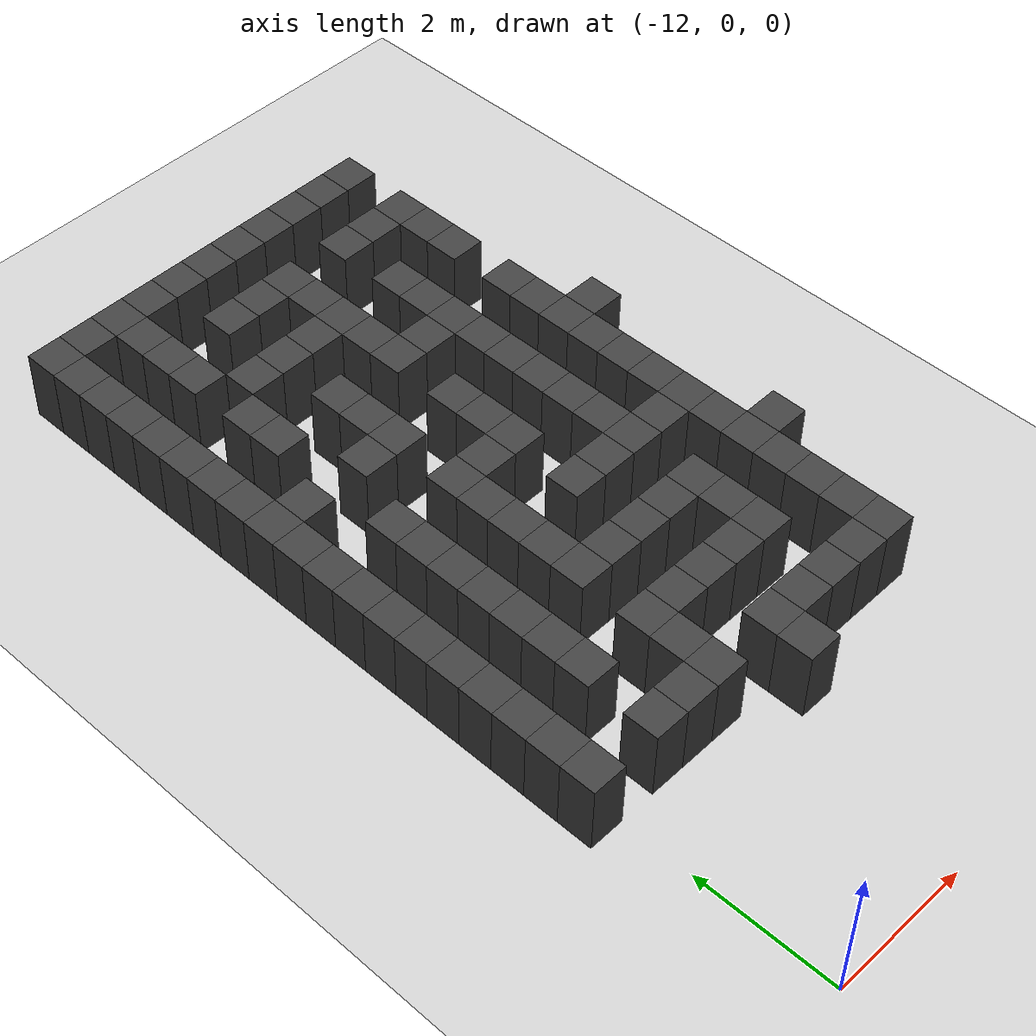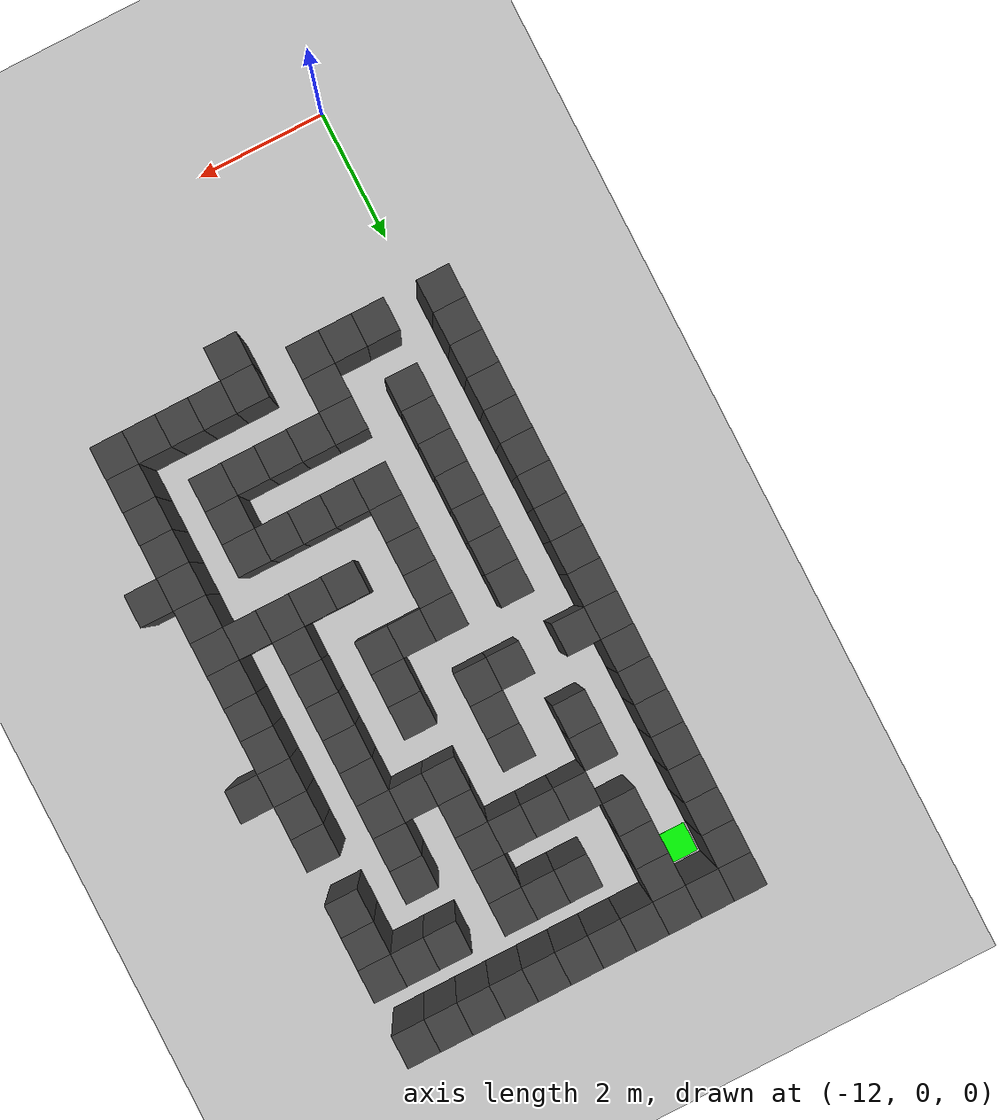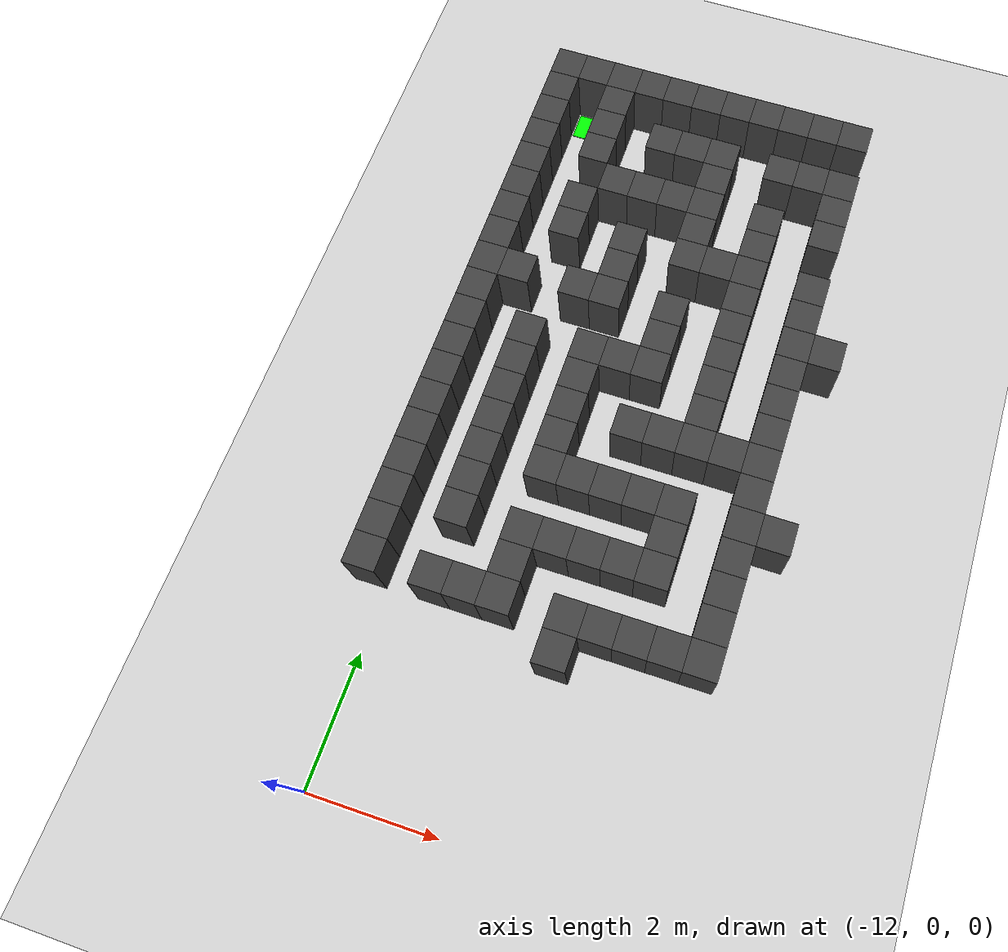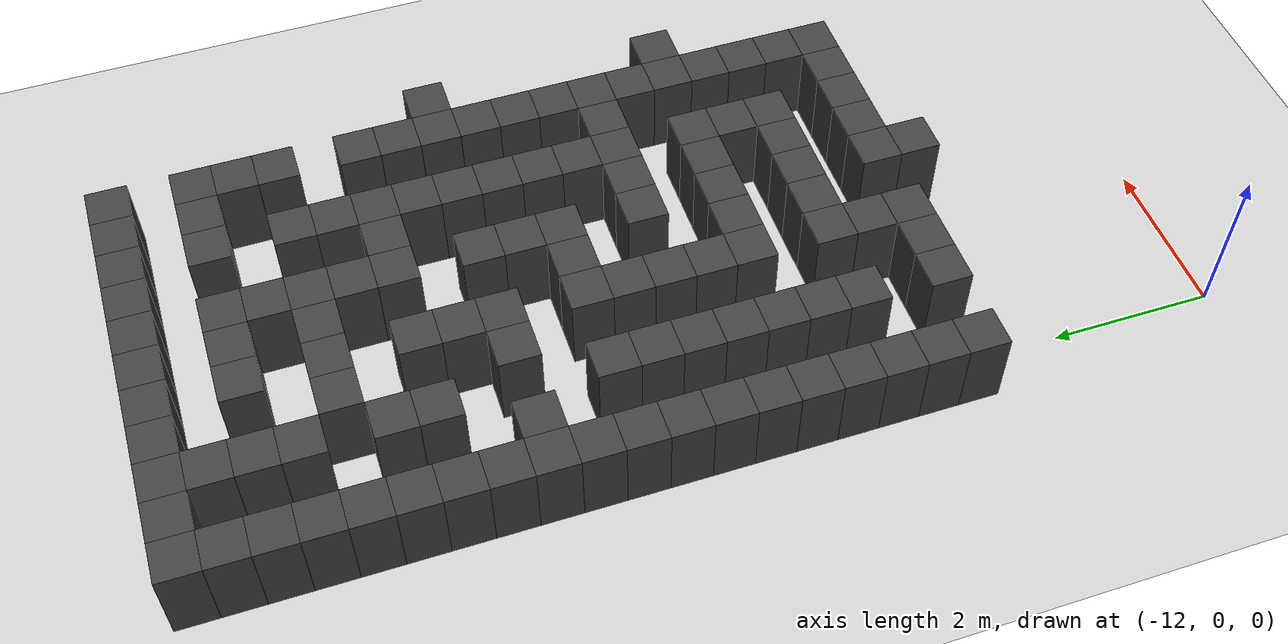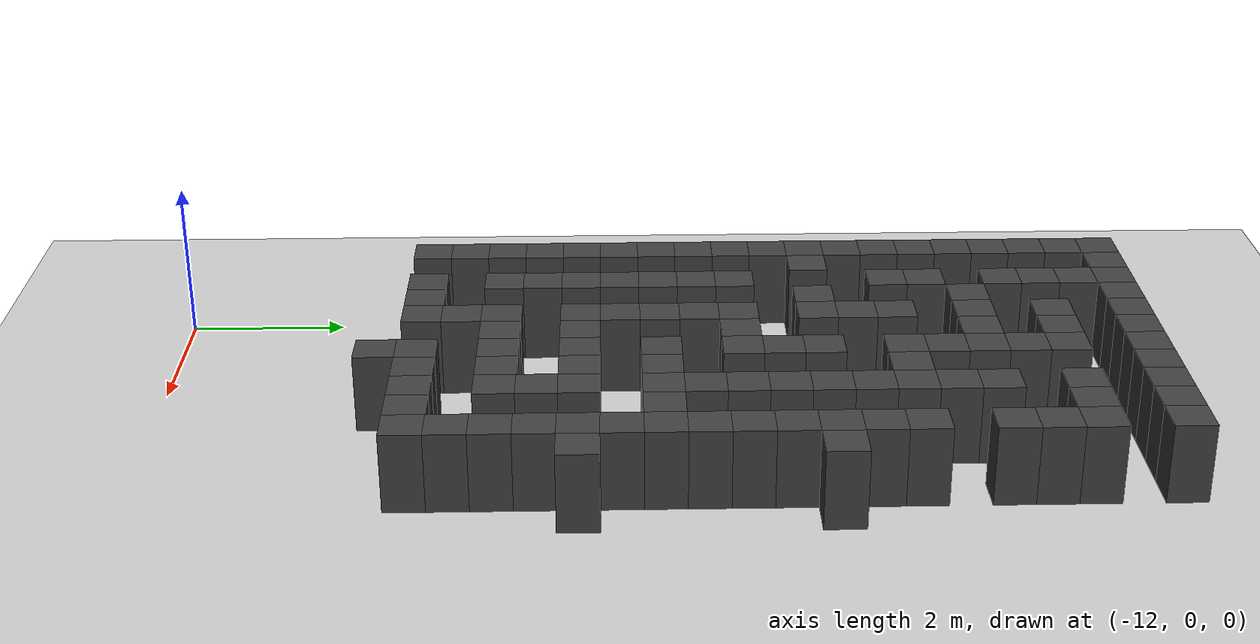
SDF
<sdf version="1.7">
 <world name="map_18313">
  <model name="ground_plane">
   <static>true</static>
   <link name="link">
    <collision name="collision">
     <geometry><plane><normal>0 0 1</normal><size>200 200</size></plane></geometry>
    </collision>
    <visual name="visual">
     <geometry><plane><normal>0 0 1</normal><size>200 200</size></plane></geometry>
     <material><ambient>0.8 0.8 0.8 1</ambient><diffuse>0.8 0.8 0.8 1</diffuse></material>
    </visual>
   </link>
  </model>
  <model name="maze_environment">
   <static>true</static>
   <link name="wall_0">
    <pose>-12.250 12.250 0.500 0 0 0</pose>
    <collision name="col"><geometry><box><size>0.5 0.5 1.0</size></box></geometry></collision>
    <visual name="vis">
     <geometry><box><size>0.5 0.5 1.0</size></box></geometry>
     <material><ambient>0.15 0.15 0.15 1</ambient><diffuse>0.25 0.25 0.25 1</diffuse></material>
    </visual>
   </link>
   <link name="wall_1">
    <pose>-11.750 12.250 0.500 0 0 0</pose>
    <collision name="col"><geometry><box><size>0.5 0.5 1.0</size></box></geometry></collision>
    <visual name="vis">
     <geometry><box><size>0.5 0.5 1.0</size></box></geometry>
     <material><ambient>0.15 0.15 0.15 1</ambient><diffuse>0.25 0.25 0.25 1</diffuse></material>
    </visual>
   </link>
   <link name="wall_2">
    <pose>-11.250 12.250 0.500 0 0 0</pose>
    <collision name="col"><geometry><box><size>0.5 0.5 1.0</size></box></geometry></collision>
    <visual name="vis">
     <geometry><box><size>0.5 0.5 1.0</size></box></geometry>
     <material><ambient>0.15 0.15 0.15 1</ambient><diffuse>0.25 0.25 0.25 1</diffuse></material>
    </visual>
   </link>
   <link name="wall_3">
    <pose>-10.750 12.250 0.500 0 0 0</pose>
    <collision name="col"><geometry><box><size>0.5 0.5 1.0</size></box></geometry></collision>
    <visual name="vis">
     <geometry><box><size>0.5 0.5 1.0</size></box></geometry>
     <material><ambient>0.15 0.15 0.15 1</ambient><diffuse>0.25 0.25 0.25 1</diffuse></material>
    </visual>
   </link>
   <link name="wall_4">
    <pose>-10.250 12.250 0.500 0 0 0</pose>
    <collision name="col"><geometry><box><size>0.5 0.5 1.0</size></box></geometry></collision>
    <visual name="vis">
     <geometry><box><size>0.5 0.5 1.0</size></box></geometry>
     <material><ambient>0.15 0.15 0.15 1</ambient><diffuse>0.25 0.25 0.25 1</diffuse></material>
    </visual>
   </link>
   <link name="wall_5">
    <pose>-9.750 12.250 0.500 0 0 0</pose>
    <collision name="col"><geometry><box><size>0.5 0.5 1.0</size></box></geometry></collision>
    <visual name="vis">
     <geometry><box><size>0.5 0.5 1.0</size></box></geometry>
     <material><ambient>0.15 0.15 0.15 1</ambient><diffuse>0.25 0.25 0.25 1</diffuse></material>
    </visual>
   </link>
   <link name="wall_6">
    <pose>-9.250 12.250 0.500 0 0 0</pose>
    <collision name="col"><geometry><box><size>0.5 0.5 1.0</size></box></geometry></collision>
    <visual name="vis">
     <geometry><box><size>0.5 0.5 1.0</size></box></geometry>
     <material><ambient>0.15 0.15 0.15 1</ambient><diffuse>0.25 0.25 0.25 1</diffuse></material>
    </visual>
   </link>
   <link name="wall_7">
    <pose>-8.750 12.250 0.500 0 0 0</pose>
    <collision name="col"><geometry><box><size>0.5 0.5 1.0</size></box></geometry></collision>
    <visual name="vis">
     <geometry><box><size>0.5 0.5 1.0</size></box></geometry>
     <material><ambient>0.15 0.15 0.15 1</ambient><diffuse>0.25 0.25 0.25 1</diffuse></material>
    </visual>
   </link>
   <link name="wall_8">
    <pose>-8.250 12.250 0.500 0 0 0</pose>
    <collision name="col"><geometry><box><size>0.5 0.5 1.0</size></box></geometry></collision>
    <visual name="vis">
     <geometry><box><size>0.5 0.5 1.0</size></box></geometry>
     <material><ambient>0.15 0.15 0.15 1</ambient><diffuse>0.25 0.25 0.25 1</diffuse></material>
    </visual>
   </link>
   <link name="wall_9">
    <pose>-7.750 12.250 0.500 0 0 0</pose>
    <collision name="col"><geometry><box><size>0.5 0.5 1.0</size></box></geometry></collision>
    <visual name="vis">
     <geometry><box><size>0.5 0.5 1.0</size></box></geometry>
     <material><ambient>0.15 0.15 0.15 1</ambient><diffuse>0.25 0.25 0.25 1</diffuse></material>
    </visual>
   </link>
   <link name="wall_10">
    <pose>-7.250 12.250 0.500 0 0 0</pose>
    <collision name="col"><geometry><box><size>0.5 0.5 1.0</size></box></geometry></collision>
    <visual name="vis">
     <geometry><box><size>0.5 0.5 1.0</size></box></geometry>
     <material><ambient>0.15 0.15 0.15 1</ambient><diffuse>0.25 0.25 0.25 1</diffuse></material>
    </visual>
   </link>
   <link name="wall_50">
    <pose>-12.250 11.750 0.500 0 0 0</pose>
    <collision name="col"><geometry><box><size>0.5 0.5 1.0</size></box></geometry></collision>
    <visual name="vis">
     <geometry><box><size>0.5 0.5 1.0</size></box></geometry>
     <material><ambient>0.15 0.15 0.15 1</ambient><diffuse>0.25 0.25 0.25 1</diffuse></material>
    </visual>
   </link>
   <link name="wall_51">
    <pose>-11.250 11.750 0.500 0 0 0</pose>
    <collision name="col"><geometry><box><size>0.5 0.5 1.0</size></box></geometry></collision>
    <visual name="vis">
     <geometry><box><size>0.5 0.5 1.0</size></box></geometry>
     <material><ambient>0.15 0.15 0.15 1</ambient><diffuse>0.25 0.25 0.25 1</diffuse></material>
    </visual>
   </link>
   <link name="wall_60">
    <pose>-12.250 11.250 0.500 0 0 0</pose>
    <collision name="col"><geometry><box><size>0.5 0.5 1.0</size></box></geometry></collision>
    <visual name="vis">
     <geometry><box><size>0.5 0.5 1.0</size></box></geometry>
     <material><ambient>0.15 0.15 0.15 1</ambient><diffuse>0.25 0.25 0.25 1</diffuse></material>
    </visual>
   </link>
   <link name="wall_61">
    <pose>-11.250 11.250 0.500 0 0 0</pose>
    <collision name="col"><geometry><box><size>0.5 0.5 1.0</size></box></geometry></collision>
    <visual name="vis">
     <geometry><box><size>0.5 0.5 1.0</size></box></geometry>
     <material><ambient>0.15 0.15 0.15 1</ambient><diffuse>0.25 0.25 0.25 1</diffuse></material>
    </visual>
   </link>
   <link name="wall_62">
    <pose>-10.250 11.250 0.500 0 0 0</pose>
    <collision name="col"><geometry><box><size>0.5 0.5 1.0</size></box></geometry></collision>
    <visual name="vis">
     <geometry><box><size>0.5 0.5 1.0</size></box></geometry>
     <material><ambient>0.15 0.15 0.15 1</ambient><diffuse>0.25 0.25 0.25 1</diffuse></material>
    </visual>
   </link>
   <link name="wall_63">
    <pose>-9.750 11.250 0.500 0 0 0</pose>
    <collision name="col"><geometry><box><size>0.5 0.5 1.0</size></box></geometry></collision>
    <visual name="vis">
     <geometry><box><size>0.5 0.5 1.0</size></box></geometry>
     <material><ambient>0.15 0.15 0.15 1</ambient><diffuse>0.25 0.25 0.25 1</diffuse></material>
    </visual>
   </link>
   <link name="wall_64">
    <pose>-9.250 11.250 0.500 0 0 0</pose>
    <collision name="col"><geometry><box><size>0.5 0.5 1.0</size></box></geometry></collision>
    <visual name="vis">
     <geometry><box><size>0.5 0.5 1.0</size></box></geometry>
     <material><ambient>0.15 0.15 0.15 1</ambient><diffuse>0.25 0.25 0.25 1</diffuse></material>
    </visual>
   </link>
   <link name="wall_65">
    <pose>-8.250 11.250 0.500 0 0 0</pose>
    <collision name="col"><geometry><box><size>0.5 0.5 1.0</size></box></geometry></collision>
    <visual name="vis">
     <geometry><box><size>0.5 0.5 1.0</size></box></geometry>
     <material><ambient>0.15 0.15 0.15 1</ambient><diffuse>0.25 0.25 0.25 1</diffuse></material>
    </visual>
   </link>
   <link name="wall_66">
    <pose>-7.750 11.250 0.500 0 0 0</pose>
    <collision name="col"><geometry><box><size>0.5 0.5 1.0</size></box></geometry></collision>
    <visual name="vis">
     <geometry><box><size>0.5 0.5 1.0</size></box></geometry>
     <material><ambient>0.15 0.15 0.15 1</ambient><diffuse>0.25 0.25 0.25 1</diffuse></material>
    </visual>
   </link>
   <link name="wall_67">
    <pose>-7.250 11.250 0.500 0 0 0</pose>
    <collision name="col"><geometry><box><size>0.5 0.5 1.0</size></box></geometry></collision>
    <visual name="vis">
     <geometry><box><size>0.5 0.5 1.0</size></box></geometry>
     <material><ambient>0.15 0.15 0.15 1</ambient><diffuse>0.25 0.25 0.25 1</diffuse></material>
    </visual>
   </link>
   <link name="wall_93">
    <pose>-12.250 10.750 0.500 0 0 0</pose>
    <collision name="col"><geometry><box><size>0.5 0.5 1.0</size></box></geometry></collision>
    <visual name="vis">
     <geometry><box><size>0.5 0.5 1.0</size></box></geometry>
     <material><ambient>0.15 0.15 0.15 1</ambient><diffuse>0.25 0.25 0.25 1</diffuse></material>
    </visual>
   </link>
   <link name="wall_94">
    <pose>-11.250 10.750 0.500 0 0 0</pose>
    <collision name="col"><geometry><box><size>0.5 0.5 1.0</size></box></geometry></collision>
    <visual name="vis">
     <geometry><box><size>0.5 0.5 1.0</size></box></geometry>
     <material><ambient>0.15 0.15 0.15 1</ambient><diffuse>0.25 0.25 0.25 1</diffuse></material>
    </visual>
   </link>
   <link name="wall_95">
    <pose>-9.250 10.750 0.500 0 0 0</pose>
    <collision name="col"><geometry><box><size>0.5 0.5 1.0</size></box></geometry></collision>
    <visual name="vis">
     <geometry><box><size>0.5 0.5 1.0</size></box></geometry>
     <material><ambient>0.15 0.15 0.15 1</ambient><diffuse>0.25 0.25 0.25 1</diffuse></material>
    </visual>
   </link>
   <link name="wall_96">
    <pose>-7.250 10.750 0.500 0 0 0</pose>
    <collision name="col"><geometry><box><size>0.5 0.5 1.0</size></box></geometry></collision>
    <visual name="vis">
     <geometry><box><size>0.5 0.5 1.0</size></box></geometry>
     <material><ambient>0.15 0.15 0.15 1</ambient><diffuse>0.25 0.25 0.25 1</diffuse></material>
    </visual>
   </link>
   <link name="wall_109">
    <pose>-12.250 10.250 0.500 0 0 0</pose>
    <collision name="col"><geometry><box><size>0.5 0.5 1.0</size></box></geometry></collision>
    <visual name="vis">
     <geometry><box><size>0.5 0.5 1.0</size></box></geometry>
     <material><ambient>0.15 0.15 0.15 1</ambient><diffuse>0.25 0.25 0.25 1</diffuse></material>
    </visual>
   </link>
   <link name="wall_110">
    <pose>-10.750 10.250 0.500 0 0 0</pose>
    <collision name="col"><geometry><box><size>0.5 0.5 1.0</size></box></geometry></collision>
    <visual name="vis">
     <geometry><box><size>0.5 0.5 1.0</size></box></geometry>
     <material><ambient>0.15 0.15 0.15 1</ambient><diffuse>0.25 0.25 0.25 1</diffuse></material>
    </visual>
   </link>
   <link name="wall_111">
    <pose>-10.250 10.250 0.500 0 0 0</pose>
    <collision name="col"><geometry><box><size>0.5 0.5 1.0</size></box></geometry></collision>
    <visual name="vis">
     <geometry><box><size>0.5 0.5 1.0</size></box></geometry>
     <material><ambient>0.15 0.15 0.15 1</ambient><diffuse>0.25 0.25 0.25 1</diffuse></material>
    </visual>
   </link>
   <link name="wall_112">
    <pose>-9.750 10.250 0.500 0 0 0</pose>
    <collision name="col"><geometry><box><size>0.5 0.5 1.0</size></box></geometry></collision>
    <visual name="vis">
     <geometry><box><size>0.5 0.5 1.0</size></box></geometry>
     <material><ambient>0.15 0.15 0.15 1</ambient><diffuse>0.25 0.25 0.25 1</diffuse></material>
    </visual>
   </link>
   <link name="wall_113">
    <pose>-9.250 10.250 0.500 0 0 0</pose>
    <collision name="col"><geometry><box><size>0.5 0.5 1.0</size></box></geometry></collision>
    <visual name="vis">
     <geometry><box><size>0.5 0.5 1.0</size></box></geometry>
     <material><ambient>0.15 0.15 0.15 1</ambient><diffuse>0.25 0.25 0.25 1</diffuse></material>
    </visual>
   </link>
   <link name="wall_114">
    <pose>-8.250 10.250 0.500 0 0 0</pose>
    <collision name="col"><geometry><box><size>0.5 0.5 1.0</size></box></geometry></collision>
    <visual name="vis">
     <geometry><box><size>0.5 0.5 1.0</size></box></geometry>
     <material><ambient>0.15 0.15 0.15 1</ambient><diffuse>0.25 0.25 0.25 1</diffuse></material>
    </visual>
   </link>
   <link name="wall_115">
    <pose>-7.250 10.250 0.500 0 0 0</pose>
    <collision name="col"><geometry><box><size>0.5 0.5 1.0</size></box></geometry></collision>
    <visual name="vis">
     <geometry><box><size>0.5 0.5 1.0</size></box></geometry>
     <material><ambient>0.15 0.15 0.15 1</ambient><diffuse>0.25 0.25 0.25 1</diffuse></material>
    </visual>
   </link>
   <link name="wall_146">
    <pose>-12.250 9.750 0.500 0 0 0</pose>
    <collision name="col"><geometry><box><size>0.5 0.5 1.0</size></box></geometry></collision>
    <visual name="vis">
     <geometry><box><size>0.5 0.5 1.0</size></box></geometry>
     <material><ambient>0.15 0.15 0.15 1</ambient><diffuse>0.25 0.25 0.25 1</diffuse></material>
    </visual>
   </link>
   <link name="wall_147">
    <pose>-11.250 9.750 0.500 0 0 0</pose>
    <collision name="col"><geometry><box><size>0.5 0.5 1.0</size></box></geometry></collision>
    <visual name="vis">
     <geometry><box><size>0.5 0.5 1.0</size></box></geometry>
     <material><ambient>0.15 0.15 0.15 1</ambient><diffuse>0.25 0.25 0.25 1</diffuse></material>
    </visual>
   </link>
   <link name="wall_148">
    <pose>-9.250 9.750 0.500 0 0 0</pose>
    <collision name="col"><geometry><box><size>0.5 0.5 1.0</size></box></geometry></collision>
    <visual name="vis">
     <geometry><box><size>0.5 0.5 1.0</size></box></geometry>
     <material><ambient>0.15 0.15 0.15 1</ambient><diffuse>0.25 0.25 0.25 1</diffuse></material>
    </visual>
   </link>
   <link name="wall_149">
    <pose>-8.250 9.750 0.500 0 0 0</pose>
    <collision name="col"><geometry><box><size>0.5 0.5 1.0</size></box></geometry></collision>
    <visual name="vis">
     <geometry><box><size>0.5 0.5 1.0</size></box></geometry>
     <material><ambient>0.15 0.15 0.15 1</ambient><diffuse>0.25 0.25 0.25 1</diffuse></material>
    </visual>
   </link>
   <link name="wall_161">
    <pose>-12.250 9.250 0.500 0 0 0</pose>
    <collision name="col"><geometry><box><size>0.5 0.5 1.0</size></box></geometry></collision>
    <visual name="vis">
     <geometry><box><size>0.5 0.5 1.0</size></box></geometry>
     <material><ambient>0.15 0.15 0.15 1</ambient><diffuse>0.25 0.25 0.25 1</diffuse></material>
    </visual>
   </link>
   <link name="wall_162">
    <pose>-11.250 9.250 0.500 0 0 0</pose>
    <collision name="col"><geometry><box><size>0.5 0.5 1.0</size></box></geometry></collision>
    <visual name="vis">
     <geometry><box><size>0.5 0.5 1.0</size></box></geometry>
     <material><ambient>0.15 0.15 0.15 1</ambient><diffuse>0.25 0.25 0.25 1</diffuse></material>
    </visual>
   </link>
   <link name="wall_163">
    <pose>-10.250 9.250 0.500 0 0 0</pose>
    <collision name="col"><geometry><box><size>0.5 0.5 1.0</size></box></geometry></collision>
    <visual name="vis">
     <geometry><box><size>0.5 0.5 1.0</size></box></geometry>
     <material><ambient>0.15 0.15 0.15 1</ambient><diffuse>0.25 0.25 0.25 1</diffuse></material>
    </visual>
   </link>
   <link name="wall_164">
    <pose>-9.250 9.250 0.500 0 0 0</pose>
    <collision name="col"><geometry><box><size>0.5 0.5 1.0</size></box></geometry></collision>
    <visual name="vis">
     <geometry><box><size>0.5 0.5 1.0</size></box></geometry>
     <material><ambient>0.15 0.15 0.15 1</ambient><diffuse>0.25 0.25 0.25 1</diffuse></material>
    </visual>
   </link>
   <link name="wall_165">
    <pose>-8.750 9.250 0.500 0 0 0</pose>
    <collision name="col"><geometry><box><size>0.5 0.5 1.0</size></box></geometry></collision>
    <visual name="vis">
     <geometry><box><size>0.5 0.5 1.0</size></box></geometry>
     <material><ambient>0.15 0.15 0.15 1</ambient><diffuse>0.25 0.25 0.25 1</diffuse></material>
    </visual>
   </link>
   <link name="wall_166">
    <pose>-8.250 9.250 0.500 0 0 0</pose>
    <collision name="col"><geometry><box><size>0.5 0.5 1.0</size></box></geometry></collision>
    <visual name="vis">
     <geometry><box><size>0.5 0.5 1.0</size></box></geometry>
     <material><ambient>0.15 0.15 0.15 1</ambient><diffuse>0.25 0.25 0.25 1</diffuse></material>
    </visual>
   </link>
   <link name="wall_167">
    <pose>-7.250 9.250 0.500 0 0 0</pose>
    <collision name="col"><geometry><box><size>0.5 0.5 1.0</size></box></geometry></collision>
    <visual name="vis">
     <geometry><box><size>0.5 0.5 1.0</size></box></geometry>
     <material><ambient>0.15 0.15 0.15 1</ambient><diffuse>0.25 0.25 0.25 1</diffuse></material>
    </visual>
   </link>
   <link name="wall_195">
    <pose>-12.250 8.750 0.500 0 0 0</pose>
    <collision name="col"><geometry><box><size>0.5 0.5 1.0</size></box></geometry></collision>
    <visual name="vis">
     <geometry><box><size>0.5 0.5 1.0</size></box></geometry>
     <material><ambient>0.15 0.15 0.15 1</ambient><diffuse>0.25 0.25 0.25 1</diffuse></material>
    </visual>
   </link>
   <link name="wall_196">
    <pose>-10.250 8.750 0.500 0 0 0</pose>
    <collision name="col"><geometry><box><size>0.5 0.5 1.0</size></box></geometry></collision>
    <visual name="vis">
     <geometry><box><size>0.5 0.5 1.0</size></box></geometry>
     <material><ambient>0.15 0.15 0.15 1</ambient><diffuse>0.25 0.25 0.25 1</diffuse></material>
    </visual>
   </link>
   <link name="wall_197">
    <pose>-8.250 8.750 0.500 0 0 0</pose>
    <collision name="col"><geometry><box><size>0.5 0.5 1.0</size></box></geometry></collision>
    <visual name="vis">
     <geometry><box><size>0.5 0.5 1.0</size></box></geometry>
     <material><ambient>0.15 0.15 0.15 1</ambient><diffuse>0.25 0.25 0.25 1</diffuse></material>
    </visual>
   </link>
   <link name="wall_198">
    <pose>-7.250 8.750 0.500 0 0 0</pose>
    <collision name="col"><geometry><box><size>0.5 0.5 1.0</size></box></geometry></collision>
    <visual name="vis">
     <geometry><box><size>0.5 0.5 1.0</size></box></geometry>
     <material><ambient>0.15 0.15 0.15 1</ambient><diffuse>0.25 0.25 0.25 1</diffuse></material>
    </visual>
   </link>
   <link name="wall_210">
    <pose>-12.250 8.250 0.500 0 0 0</pose>
    <collision name="col"><geometry><box><size>0.5 0.5 1.0</size></box></geometry></collision>
    <visual name="vis">
     <geometry><box><size>0.5 0.5 1.0</size></box></geometry>
     <material><ambient>0.15 0.15 0.15 1</ambient><diffuse>0.25 0.25 0.25 1</diffuse></material>
    </visual>
   </link>
   <link name="wall_211">
    <pose>-11.750 8.250 0.500 0 0 0</pose>
    <collision name="col"><geometry><box><size>0.5 0.5 1.0</size></box></geometry></collision>
    <visual name="vis">
     <geometry><box><size>0.5 0.5 1.0</size></box></geometry>
     <material><ambient>0.15 0.15 0.15 1</ambient><diffuse>0.25 0.25 0.25 1</diffuse></material>
    </visual>
   </link>
   <link name="wall_212">
    <pose>-10.750 8.250 0.500 0 0 0</pose>
    <collision name="col"><geometry><box><size>0.5 0.5 1.0</size></box></geometry></collision>
    <visual name="vis">
     <geometry><box><size>0.5 0.5 1.0</size></box></geometry>
     <material><ambient>0.15 0.15 0.15 1</ambient><diffuse>0.25 0.25 0.25 1</diffuse></material>
    </visual>
   </link>
   <link name="wall_213">
    <pose>-10.250 8.250 0.500 0 0 0</pose>
    <collision name="col"><geometry><box><size>0.5 0.5 1.0</size></box></geometry></collision>
    <visual name="vis">
     <geometry><box><size>0.5 0.5 1.0</size></box></geometry>
     <material><ambient>0.15 0.15 0.15 1</ambient><diffuse>0.25 0.25 0.25 1</diffuse></material>
    </visual>
   </link>
   <link name="wall_214">
    <pose>-9.250 8.250 0.500 0 0 0</pose>
    <collision name="col"><geometry><box><size>0.5 0.5 1.0</size></box></geometry></collision>
    <visual name="vis">
     <geometry><box><size>0.5 0.5 1.0</size></box></geometry>
     <material><ambient>0.15 0.15 0.15 1</ambient><diffuse>0.25 0.25 0.25 1</diffuse></material>
    </visual>
   </link>
   <link name="wall_215">
    <pose>-8.250 8.250 0.500 0 0 0</pose>
    <collision name="col"><geometry><box><size>0.5 0.5 1.0</size></box></geometry></collision>
    <visual name="vis">
     <geometry><box><size>0.5 0.5 1.0</size></box></geometry>
     <material><ambient>0.15 0.15 0.15 1</ambient><diffuse>0.25 0.25 0.25 1</diffuse></material>
    </visual>
   </link>
   <link name="wall_216">
    <pose>-7.250 8.250 0.500 0 0 0</pose>
    <collision name="col"><geometry><box><size>0.5 0.5 1.0</size></box></geometry></collision>
    <visual name="vis">
     <geometry><box><size>0.5 0.5 1.0</size></box></geometry>
     <material><ambient>0.15 0.15 0.15 1</ambient><diffuse>0.25 0.25 0.25 1</diffuse></material>
    </visual>
   </link>
   <link name="wall_217">
    <pose>-6.750 8.250 0.500 0 0 0</pose>
    <collision name="col"><geometry><box><size>0.5 0.5 1.0</size></box></geometry></collision>
    <visual name="vis">
     <geometry><box><size>0.5 0.5 1.0</size></box></geometry>
     <material><ambient>0.15 0.15 0.15 1</ambient><diffuse>0.25 0.25 0.25 1</diffuse></material>
    </visual>
   </link>
   <link name="wall_245">
    <pose>-12.250 7.750 0.500 0 0 0</pose>
    <collision name="col"><geometry><box><size>0.5 0.5 1.0</size></box></geometry></collision>
    <visual name="vis">
     <geometry><box><size>0.5 0.5 1.0</size></box></geometry>
     <material><ambient>0.15 0.15 0.15 1</ambient><diffuse>0.25 0.25 0.25 1</diffuse></material>
    </visual>
   </link>
   <link name="wall_246">
    <pose>-9.250 7.750 0.500 0 0 0</pose>
    <collision name="col"><geometry><box><size>0.5 0.5 1.0</size></box></geometry></collision>
    <visual name="vis">
     <geometry><box><size>0.5 0.5 1.0</size></box></geometry>
     <material><ambient>0.15 0.15 0.15 1</ambient><diffuse>0.25 0.25 0.25 1</diffuse></material>
    </visual>
   </link>
   <link name="wall_247">
    <pose>-8.250 7.750 0.500 0 0 0</pose>
    <collision name="col"><geometry><box><size>0.5 0.5 1.0</size></box></geometry></collision>
    <visual name="vis">
     <geometry><box><size>0.5 0.5 1.0</size></box></geometry>
     <material><ambient>0.15 0.15 0.15 1</ambient><diffuse>0.25 0.25 0.25 1</diffuse></material>
    </visual>
   </link>
   <link name="wall_248">
    <pose>-7.250 7.750 0.500 0 0 0</pose>
    <collision name="col"><geometry><box><size>0.5 0.5 1.0</size></box></geometry></collision>
    <visual name="vis">
     <geometry><box><size>0.5 0.5 1.0</size></box></geometry>
     <material><ambient>0.15 0.15 0.15 1</ambient><diffuse>0.25 0.25 0.25 1</diffuse></material>
    </visual>
   </link>
   <link name="wall_259">
    <pose>-12.250 7.250 0.500 0 0 0</pose>
    <collision name="col"><geometry><box><size>0.5 0.5 1.0</size></box></geometry></collision>
    <visual name="vis">
     <geometry><box><size>0.5 0.5 1.0</size></box></geometry>
     <material><ambient>0.15 0.15 0.15 1</ambient><diffuse>0.25 0.25 0.25 1</diffuse></material>
    </visual>
   </link>
   <link name="wall_260">
    <pose>-11.250 7.250 0.500 0 0 0</pose>
    <collision name="col"><geometry><box><size>0.5 0.5 1.0</size></box></geometry></collision>
    <visual name="vis">
     <geometry><box><size>0.5 0.5 1.0</size></box></geometry>
     <material><ambient>0.15 0.15 0.15 1</ambient><diffuse>0.25 0.25 0.25 1</diffuse></material>
    </visual>
   </link>
   <link name="wall_261">
    <pose>-10.250 7.250 0.500 0 0 0</pose>
    <collision name="col"><geometry><box><size>0.5 0.5 1.0</size></box></geometry></collision>
    <visual name="vis">
     <geometry><box><size>0.5 0.5 1.0</size></box></geometry>
     <material><ambient>0.15 0.15 0.15 1</ambient><diffuse>0.25 0.25 0.25 1</diffuse></material>
    </visual>
   </link>
   <link name="wall_262">
    <pose>-9.750 7.250 0.500 0 0 0</pose>
    <collision name="col"><geometry><box><size>0.5 0.5 1.0</size></box></geometry></collision>
    <visual name="vis">
     <geometry><box><size>0.5 0.5 1.0</size></box></geometry>
     <material><ambient>0.15 0.15 0.15 1</ambient><diffuse>0.25 0.25 0.25 1</diffuse></material>
    </visual>
   </link>
   <link name="wall_263">
    <pose>-9.250 7.250 0.500 0 0 0</pose>
    <collision name="col"><geometry><box><size>0.5 0.5 1.0</size></box></geometry></collision>
    <visual name="vis">
     <geometry><box><size>0.5 0.5 1.0</size></box></geometry>
     <material><ambient>0.15 0.15 0.15 1</ambient><diffuse>0.25 0.25 0.25 1</diffuse></material>
    </visual>
   </link>
   <link name="wall_264">
    <pose>-8.250 7.250 0.500 0 0 0</pose>
    <collision name="col"><geometry><box><size>0.5 0.5 1.0</size></box></geometry></collision>
    <visual name="vis">
     <geometry><box><size>0.5 0.5 1.0</size></box></geometry>
     <material><ambient>0.15 0.15 0.15 1</ambient><diffuse>0.25 0.25 0.25 1</diffuse></material>
    </visual>
   </link>
   <link name="wall_265">
    <pose>-7.250 7.250 0.500 0 0 0</pose>
    <collision name="col"><geometry><box><size>0.5 0.5 1.0</size></box></geometry></collision>
    <visual name="vis">
     <geometry><box><size>0.5 0.5 1.0</size></box></geometry>
     <material><ambient>0.15 0.15 0.15 1</ambient><diffuse>0.25 0.25 0.25 1</diffuse></material>
    </visual>
   </link>
   <link name="wall_294">
    <pose>-12.250 6.750 0.500 0 0 0</pose>
    <collision name="col"><geometry><box><size>0.5 0.5 1.0</size></box></geometry></collision>
    <visual name="vis">
     <geometry><box><size>0.5 0.5 1.0</size></box></geometry>
     <material><ambient>0.15 0.15 0.15 1</ambient><diffuse>0.25 0.25 0.25 1</diffuse></material>
    </visual>
   </link>
   <link name="wall_295">
    <pose>-11.250 6.750 0.500 0 0 0</pose>
    <collision name="col"><geometry><box><size>0.5 0.5 1.0</size></box></geometry></collision>
    <visual name="vis">
     <geometry><box><size>0.5 0.5 1.0</size></box></geometry>
     <material><ambient>0.15 0.15 0.15 1</ambient><diffuse>0.25 0.25 0.25 1</diffuse></material>
    </visual>
   </link>
   <link name="wall_296">
    <pose>-10.250 6.750 0.500 0 0 0</pose>
    <collision name="col"><geometry><box><size>0.5 0.5 1.0</size></box></geometry></collision>
    <visual name="vis">
     <geometry><box><size>0.5 0.5 1.0</size></box></geometry>
     <material><ambient>0.15 0.15 0.15 1</ambient><diffuse>0.25 0.25 0.25 1</diffuse></material>
    </visual>
   </link>
   <link name="wall_297">
    <pose>-8.250 6.750 0.500 0 0 0</pose>
    <collision name="col"><geometry><box><size>0.5 0.5 1.0</size></box></geometry></collision>
    <visual name="vis">
     <geometry><box><size>0.5 0.5 1.0</size></box></geometry>
     <material><ambient>0.15 0.15 0.15 1</ambient><diffuse>0.25 0.25 0.25 1</diffuse></material>
    </visual>
   </link>
   <link name="wall_298">
    <pose>-7.250 6.750 0.500 0 0 0</pose>
    <collision name="col"><geometry><box><size>0.5 0.5 1.0</size></box></geometry></collision>
    <visual name="vis">
     <geometry><box><size>0.5 0.5 1.0</size></box></geometry>
     <material><ambient>0.15 0.15 0.15 1</ambient><diffuse>0.25 0.25 0.25 1</diffuse></material>
    </visual>
   </link>
   <link name="wall_310">
    <pose>-12.250 6.250 0.500 0 0 0</pose>
    <collision name="col"><geometry><box><size>0.5 0.5 1.0</size></box></geometry></collision>
    <visual name="vis">
     <geometry><box><size>0.5 0.5 1.0</size></box></geometry>
     <material><ambient>0.15 0.15 0.15 1</ambient><diffuse>0.25 0.25 0.25 1</diffuse></material>
    </visual>
   </link>
   <link name="wall_311">
    <pose>-11.250 6.250 0.500 0 0 0</pose>
    <collision name="col"><geometry><box><size>0.5 0.5 1.0</size></box></geometry></collision>
    <visual name="vis">
     <geometry><box><size>0.5 0.5 1.0</size></box></geometry>
     <material><ambient>0.15 0.15 0.15 1</ambient><diffuse>0.25 0.25 0.25 1</diffuse></material>
    </visual>
   </link>
   <link name="wall_312">
    <pose>-10.250 6.250 0.500 0 0 0</pose>
    <collision name="col"><geometry><box><size>0.5 0.5 1.0</size></box></geometry></collision>
    <visual name="vis">
     <geometry><box><size>0.5 0.5 1.0</size></box></geometry>
     <material><ambient>0.15 0.15 0.15 1</ambient><diffuse>0.25 0.25 0.25 1</diffuse></material>
    </visual>
   </link>
   <link name="wall_313">
    <pose>-9.250 6.250 0.500 0 0 0</pose>
    <collision name="col"><geometry><box><size>0.5 0.5 1.0</size></box></geometry></collision>
    <visual name="vis">
     <geometry><box><size>0.5 0.5 1.0</size></box></geometry>
     <material><ambient>0.15 0.15 0.15 1</ambient><diffuse>0.25 0.25 0.25 1</diffuse></material>
    </visual>
   </link>
   <link name="wall_314">
    <pose>-8.750 6.250 0.500 0 0 0</pose>
    <collision name="col"><geometry><box><size>0.5 0.5 1.0</size></box></geometry></collision>
    <visual name="vis">
     <geometry><box><size>0.5 0.5 1.0</size></box></geometry>
     <material><ambient>0.15 0.15 0.15 1</ambient><diffuse>0.25 0.25 0.25 1</diffuse></material>
    </visual>
   </link>
   <link name="wall_315">
    <pose>-8.250 6.250 0.500 0 0 0</pose>
    <collision name="col"><geometry><box><size>0.5 0.5 1.0</size></box></geometry></collision>
    <visual name="vis">
     <geometry><box><size>0.5 0.5 1.0</size></box></geometry>
     <material><ambient>0.15 0.15 0.15 1</ambient><diffuse>0.25 0.25 0.25 1</diffuse></material>
    </visual>
   </link>
   <link name="wall_316">
    <pose>-7.750 6.250 0.500 0 0 0</pose>
    <collision name="col"><geometry><box><size>0.5 0.5 1.0</size></box></geometry></collision>
    <visual name="vis">
     <geometry><box><size>0.5 0.5 1.0</size></box></geometry>
     <material><ambient>0.15 0.15 0.15 1</ambient><diffuse>0.25 0.25 0.25 1</diffuse></material>
    </visual>
   </link>
   <link name="wall_317">
    <pose>-7.250 6.250 0.500 0 0 0</pose>
    <collision name="col"><geometry><box><size>0.5 0.5 1.0</size></box></geometry></collision>
    <visual name="vis">
     <geometry><box><size>0.5 0.5 1.0</size></box></geometry>
     <material><ambient>0.15 0.15 0.15 1</ambient><diffuse>0.25 0.25 0.25 1</diffuse></material>
    </visual>
   </link>
   <link name="wall_346">
    <pose>-12.250 5.750 0.500 0 0 0</pose>
    <collision name="col"><geometry><box><size>0.5 0.5 1.0</size></box></geometry></collision>
    <visual name="vis">
     <geometry><box><size>0.5 0.5 1.0</size></box></geometry>
     <material><ambient>0.15 0.15 0.15 1</ambient><diffuse>0.25 0.25 0.25 1</diffuse></material>
    </visual>
   </link>
   <link name="wall_347">
    <pose>-11.250 5.750 0.500 0 0 0</pose>
    <collision name="col"><geometry><box><size>0.5 0.5 1.0</size></box></geometry></collision>
    <visual name="vis">
     <geometry><box><size>0.5 0.5 1.0</size></box></geometry>
     <material><ambient>0.15 0.15 0.15 1</ambient><diffuse>0.25 0.25 0.25 1</diffuse></material>
    </visual>
   </link>
   <link name="wall_348">
    <pose>-10.250 5.750 0.500 0 0 0</pose>
    <collision name="col"><geometry><box><size>0.5 0.5 1.0</size></box></geometry></collision>
    <visual name="vis">
     <geometry><box><size>0.5 0.5 1.0</size></box></geometry>
     <material><ambient>0.15 0.15 0.15 1</ambient><diffuse>0.25 0.25 0.25 1</diffuse></material>
    </visual>
   </link>
   <link name="wall_349">
    <pose>-7.250 5.750 0.500 0 0 0</pose>
    <collision name="col"><geometry><box><size>0.5 0.5 1.0</size></box></geometry></collision>
    <visual name="vis">
     <geometry><box><size>0.5 0.5 1.0</size></box></geometry>
     <material><ambient>0.15 0.15 0.15 1</ambient><diffuse>0.25 0.25 0.25 1</diffuse></material>
    </visual>
   </link>
   <link name="wall_359">
    <pose>-12.250 5.250 0.500 0 0 0</pose>
    <collision name="col"><geometry><box><size>0.5 0.5 1.0</size></box></geometry></collision>
    <visual name="vis">
     <geometry><box><size>0.5 0.5 1.0</size></box></geometry>
     <material><ambient>0.15 0.15 0.15 1</ambient><diffuse>0.25 0.25 0.25 1</diffuse></material>
    </visual>
   </link>
   <link name="wall_360">
    <pose>-11.250 5.250 0.500 0 0 0</pose>
    <collision name="col"><geometry><box><size>0.5 0.5 1.0</size></box></geometry></collision>
    <visual name="vis">
     <geometry><box><size>0.5 0.5 1.0</size></box></geometry>
     <material><ambient>0.15 0.15 0.15 1</ambient><diffuse>0.25 0.25 0.25 1</diffuse></material>
    </visual>
   </link>
   <link name="wall_361">
    <pose>-10.250 5.250 0.500 0 0 0</pose>
    <collision name="col"><geometry><box><size>0.5 0.5 1.0</size></box></geometry></collision>
    <visual name="vis">
     <geometry><box><size>0.5 0.5 1.0</size></box></geometry>
     <material><ambient>0.15 0.15 0.15 1</ambient><diffuse>0.25 0.25 0.25 1</diffuse></material>
    </visual>
   </link>
   <link name="wall_362">
    <pose>-9.750 5.250 0.500 0 0 0</pose>
    <collision name="col"><geometry><box><size>0.5 0.5 1.0</size></box></geometry></collision>
    <visual name="vis">
     <geometry><box><size>0.5 0.5 1.0</size></box></geometry>
     <material><ambient>0.15 0.15 0.15 1</ambient><diffuse>0.25 0.25 0.25 1</diffuse></material>
    </visual>
   </link>
   <link name="wall_363">
    <pose>-9.250 5.250 0.500 0 0 0</pose>
    <collision name="col"><geometry><box><size>0.5 0.5 1.0</size></box></geometry></collision>
    <visual name="vis">
     <geometry><box><size>0.5 0.5 1.0</size></box></geometry>
     <material><ambient>0.15 0.15 0.15 1</ambient><diffuse>0.25 0.25 0.25 1</diffuse></material>
    </visual>
   </link>
   <link name="wall_364">
    <pose>-8.750 5.250 0.500 0 0 0</pose>
    <collision name="col"><geometry><box><size>0.5 0.5 1.0</size></box></geometry></collision>
    <visual name="vis">
     <geometry><box><size>0.5 0.5 1.0</size></box></geometry>
     <material><ambient>0.15 0.15 0.15 1</ambient><diffuse>0.25 0.25 0.25 1</diffuse></material>
    </visual>
   </link>
   <link name="wall_365">
    <pose>-8.250 5.250 0.500 0 0 0</pose>
    <collision name="col"><geometry><box><size>0.5 0.5 1.0</size></box></geometry></collision>
    <visual name="vis">
     <geometry><box><size>0.5 0.5 1.0</size></box></geometry>
     <material><ambient>0.15 0.15 0.15 1</ambient><diffuse>0.25 0.25 0.25 1</diffuse></material>
    </visual>
   </link>
   <link name="wall_366">
    <pose>-7.250 5.250 0.500 0 0 0</pose>
    <collision name="col"><geometry><box><size>0.5 0.5 1.0</size></box></geometry></collision>
    <visual name="vis">
     <geometry><box><size>0.5 0.5 1.0</size></box></geometry>
     <material><ambient>0.15 0.15 0.15 1</ambient><diffuse>0.25 0.25 0.25 1</diffuse></material>
    </visual>
   </link>
   <link name="wall_367">
    <pose>-6.750 5.250 0.500 0 0 0</pose>
    <collision name="col"><geometry><box><size>0.5 0.5 1.0</size></box></geometry></collision>
    <visual name="vis">
     <geometry><box><size>0.5 0.5 1.0</size></box></geometry>
     <material><ambient>0.15 0.15 0.15 1</ambient><diffuse>0.25 0.25 0.25 1</diffuse></material>
    </visual>
   </link>
   <link name="wall_396">
    <pose>-12.250 4.750 0.500 0 0 0</pose>
    <collision name="col"><geometry><box><size>0.5 0.5 1.0</size></box></geometry></collision>
    <visual name="vis">
     <geometry><box><size>0.5 0.5 1.0</size></box></geometry>
     <material><ambient>0.15 0.15 0.15 1</ambient><diffuse>0.25 0.25 0.25 1</diffuse></material>
    </visual>
   </link>
   <link name="wall_397">
    <pose>-11.250 4.750 0.500 0 0 0</pose>
    <collision name="col"><geometry><box><size>0.5 0.5 1.0</size></box></geometry></collision>
    <visual name="vis">
     <geometry><box><size>0.5 0.5 1.0</size></box></geometry>
     <material><ambient>0.15 0.15 0.15 1</ambient><diffuse>0.25 0.25 0.25 1</diffuse></material>
    </visual>
   </link>
   <link name="wall_398">
    <pose>-8.250 4.750 0.500 0 0 0</pose>
    <collision name="col"><geometry><box><size>0.5 0.5 1.0</size></box></geometry></collision>
    <visual name="vis">
     <geometry><box><size>0.5 0.5 1.0</size></box></geometry>
     <material><ambient>0.15 0.15 0.15 1</ambient><diffuse>0.25 0.25 0.25 1</diffuse></material>
    </visual>
   </link>
   <link name="wall_399">
    <pose>-7.250 4.750 0.500 0 0 0</pose>
    <collision name="col"><geometry><box><size>0.5 0.5 1.0</size></box></geometry></collision>
    <visual name="vis">
     <geometry><box><size>0.5 0.5 1.0</size></box></geometry>
     <material><ambient>0.15 0.15 0.15 1</ambient><diffuse>0.25 0.25 0.25 1</diffuse></material>
    </visual>
   </link>
   <link name="wall_409">
    <pose>-12.250 4.250 0.500 0 0 0</pose>
    <collision name="col"><geometry><box><size>0.5 0.5 1.0</size></box></geometry></collision>
    <visual name="vis">
     <geometry><box><size>0.5 0.5 1.0</size></box></geometry>
     <material><ambient>0.15 0.15 0.15 1</ambient><diffuse>0.25 0.25 0.25 1</diffuse></material>
    </visual>
   </link>
   <link name="wall_410">
    <pose>-11.250 4.250 0.500 0 0 0</pose>
    <collision name="col"><geometry><box><size>0.5 0.5 1.0</size></box></geometry></collision>
    <visual name="vis">
     <geometry><box><size>0.5 0.5 1.0</size></box></geometry>
     <material><ambient>0.15 0.15 0.15 1</ambient><diffuse>0.25 0.25 0.25 1</diffuse></material>
    </visual>
   </link>
   <link name="wall_411">
    <pose>-10.250 4.250 0.500 0 0 0</pose>
    <collision name="col"><geometry><box><size>0.5 0.5 1.0</size></box></geometry></collision>
    <visual name="vis">
     <geometry><box><size>0.5 0.5 1.0</size></box></geometry>
     <material><ambient>0.15 0.15 0.15 1</ambient><diffuse>0.25 0.25 0.25 1</diffuse></material>
    </visual>
   </link>
   <link name="wall_412">
    <pose>-9.750 4.250 0.500 0 0 0</pose>
    <collision name="col"><geometry><box><size>0.5 0.5 1.0</size></box></geometry></collision>
    <visual name="vis">
     <geometry><box><size>0.5 0.5 1.0</size></box></geometry>
     <material><ambient>0.15 0.15 0.15 1</ambient><diffuse>0.25 0.25 0.25 1</diffuse></material>
    </visual>
   </link>
   <link name="wall_413">
    <pose>-9.250 4.250 0.500 0 0 0</pose>
    <collision name="col"><geometry><box><size>0.5 0.5 1.0</size></box></geometry></collision>
    <visual name="vis">
     <geometry><box><size>0.5 0.5 1.0</size></box></geometry>
     <material><ambient>0.15 0.15 0.15 1</ambient><diffuse>0.25 0.25 0.25 1</diffuse></material>
    </visual>
   </link>
   <link name="wall_414">
    <pose>-8.750 4.250 0.500 0 0 0</pose>
    <collision name="col"><geometry><box><size>0.5 0.5 1.0</size></box></geometry></collision>
    <visual name="vis">
     <geometry><box><size>0.5 0.5 1.0</size></box></geometry>
     <material><ambient>0.15 0.15 0.15 1</ambient><diffuse>0.25 0.25 0.25 1</diffuse></material>
    </visual>
   </link>
   <link name="wall_415">
    <pose>-8.250 4.250 0.500 0 0 0</pose>
    <collision name="col"><geometry><box><size>0.5 0.5 1.0</size></box></geometry></collision>
    <visual name="vis">
     <geometry><box><size>0.5 0.5 1.0</size></box></geometry>
     <material><ambient>0.15 0.15 0.15 1</ambient><diffuse>0.25 0.25 0.25 1</diffuse></material>
    </visual>
   </link>
   <link name="wall_416">
    <pose>-7.250 4.250 0.500 0 0 0</pose>
    <collision name="col"><geometry><box><size>0.5 0.5 1.0</size></box></geometry></collision>
    <visual name="vis">
     <geometry><box><size>0.5 0.5 1.0</size></box></geometry>
     <material><ambient>0.15 0.15 0.15 1</ambient><diffuse>0.25 0.25 0.25 1</diffuse></material>
    </visual>
   </link>
   <link name="wall_446">
    <pose>-12.250 3.750 0.500 0 0 0</pose>
    <collision name="col"><geometry><box><size>0.5 0.5 1.0</size></box></geometry></collision>
    <visual name="vis">
     <geometry><box><size>0.5 0.5 1.0</size></box></geometry>
     <material><ambient>0.15 0.15 0.15 1</ambient><diffuse>0.25 0.25 0.25 1</diffuse></material>
    </visual>
   </link>
   <link name="wall_447">
    <pose>-10.250 3.750 0.500 0 0 0</pose>
    <collision name="col"><geometry><box><size>0.5 0.5 1.0</size></box></geometry></collision>
    <visual name="vis">
     <geometry><box><size>0.5 0.5 1.0</size></box></geometry>
     <material><ambient>0.15 0.15 0.15 1</ambient><diffuse>0.25 0.25 0.25 1</diffuse></material>
    </visual>
   </link>
   <link name="wall_448">
    <pose>-7.250 3.750 0.500 0 0 0</pose>
    <collision name="col"><geometry><box><size>0.5 0.5 1.0</size></box></geometry></collision>
    <visual name="vis">
     <geometry><box><size>0.5 0.5 1.0</size></box></geometry>
     <material><ambient>0.15 0.15 0.15 1</ambient><diffuse>0.25 0.25 0.25 1</diffuse></material>
    </visual>
   </link>
   <link name="wall_460">
    <pose>-12.250 3.250 0.500 0 0 0</pose>
    <collision name="col"><geometry><box><size>0.5 0.5 1.0</size></box></geometry></collision>
    <visual name="vis">
     <geometry><box><size>0.5 0.5 1.0</size></box></geometry>
     <material><ambient>0.15 0.15 0.15 1</ambient><diffuse>0.25 0.25 0.25 1</diffuse></material>
    </visual>
   </link>
   <link name="wall_461">
    <pose>-11.250 3.250 0.500 0 0 0</pose>
    <collision name="col"><geometry><box><size>0.5 0.5 1.0</size></box></geometry></collision>
    <visual name="vis">
     <geometry><box><size>0.5 0.5 1.0</size></box></geometry>
     <material><ambient>0.15 0.15 0.15 1</ambient><diffuse>0.25 0.25 0.25 1</diffuse></material>
    </visual>
   </link>
   <link name="wall_462">
    <pose>-10.750 3.250 0.500 0 0 0</pose>
    <collision name="col"><geometry><box><size>0.5 0.5 1.0</size></box></geometry></collision>
    <visual name="vis">
     <geometry><box><size>0.5 0.5 1.0</size></box></geometry>
     <material><ambient>0.15 0.15 0.15 1</ambient><diffuse>0.25 0.25 0.25 1</diffuse></material>
    </visual>
   </link>
   <link name="wall_463">
    <pose>-10.250 3.250 0.500 0 0 0</pose>
    <collision name="col"><geometry><box><size>0.5 0.5 1.0</size></box></geometry></collision>
    <visual name="vis">
     <geometry><box><size>0.5 0.5 1.0</size></box></geometry>
     <material><ambient>0.15 0.15 0.15 1</ambient><diffuse>0.25 0.25 0.25 1</diffuse></material>
    </visual>
   </link>
   <link name="wall_464">
    <pose>-9.250 3.250 0.500 0 0 0</pose>
    <collision name="col"><geometry><box><size>0.5 0.5 1.0</size></box></geometry></collision>
    <visual name="vis">
     <geometry><box><size>0.5 0.5 1.0</size></box></geometry>
     <material><ambient>0.15 0.15 0.15 1</ambient><diffuse>0.25 0.25 0.25 1</diffuse></material>
    </visual>
   </link>
   <link name="wall_465">
    <pose>-8.750 3.250 0.500 0 0 0</pose>
    <collision name="col"><geometry><box><size>0.5 0.5 1.0</size></box></geometry></collision>
    <visual name="vis">
     <geometry><box><size>0.5 0.5 1.0</size></box></geometry>
     <material><ambient>0.15 0.15 0.15 1</ambient><diffuse>0.25 0.25 0.25 1</diffuse></material>
    </visual>
   </link>
   <link name="wall_466">
    <pose>-8.250 3.250 0.500 0 0 0</pose>
    <collision name="col"><geometry><box><size>0.5 0.5 1.0</size></box></geometry></collision>
    <visual name="vis">
     <geometry><box><size>0.5 0.5 1.0</size></box></geometry>
     <material><ambient>0.15 0.15 0.15 1</ambient><diffuse>0.25 0.25 0.25 1</diffuse></material>
    </visual>
   </link>
   <link name="wall_467">
    <pose>-7.750 3.250 0.500 0 0 0</pose>
    <collision name="col"><geometry><box><size>0.5 0.5 1.0</size></box></geometry></collision>
    <visual name="vis">
     <geometry><box><size>0.5 0.5 1.0</size></box></geometry>
     <material><ambient>0.15 0.15 0.15 1</ambient><diffuse>0.25 0.25 0.25 1</diffuse></material>
    </visual>
   </link>
   <link name="wall_468">
    <pose>-7.250 3.250 0.500 0 0 0</pose>
    <collision name="col"><geometry><box><size>0.5 0.5 1.0</size></box></geometry></collision>
    <visual name="vis">
     <geometry><box><size>0.5 0.5 1.0</size></box></geometry>
     <material><ambient>0.15 0.15 0.15 1</ambient><diffuse>0.25 0.25 0.25 1</diffuse></material>
    </visual>
   </link>
   <link name="wall_498">
    <pose>-9.250 2.750 0.500 0 0 0</pose>
    <collision name="col"><geometry><box><size>0.5 0.5 1.0</size></box></geometry></collision>
    <visual name="vis">
     <geometry><box><size>0.5 0.5 1.0</size></box></geometry>
     <material><ambient>0.15 0.15 0.15 1</ambient><diffuse>0.25 0.25 0.25 1</diffuse></material>
    </visual>
   </link>
   <link name="start_zone">
    <pose>-11.750 11.750 0.005 0 0 0</pose>
    <visual name="vis">
     <geometry><box><size>0.45 0.45 0.01</size></box></geometry>
     <material>
      <ambient>0.0 1.0 0.0 1</ambient>
      <diffuse>0.0 1.0 0.0 1</diffuse>
      <emissive>0.00 0.60 0.00 1</emissive>
     </material>
    </visual>
   </link>
  </model>
 </world>
</sdf>
